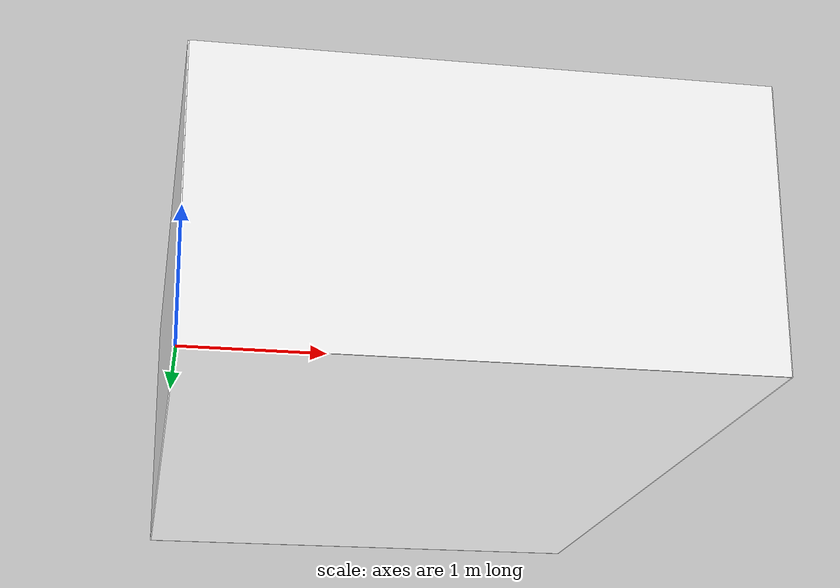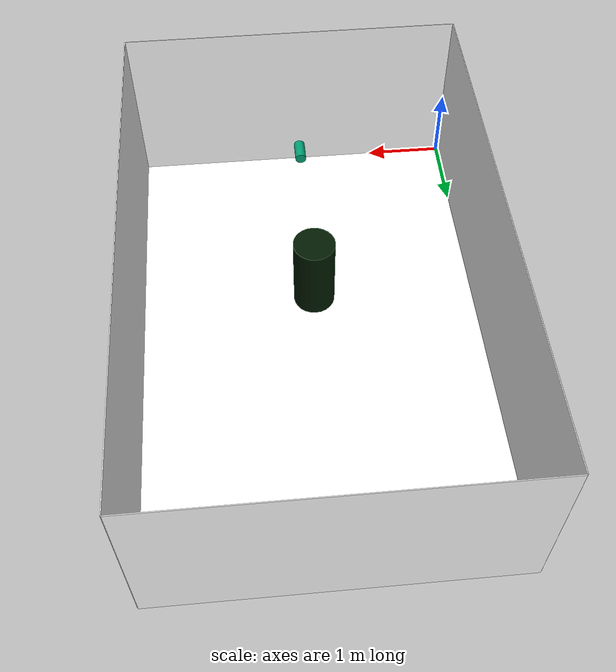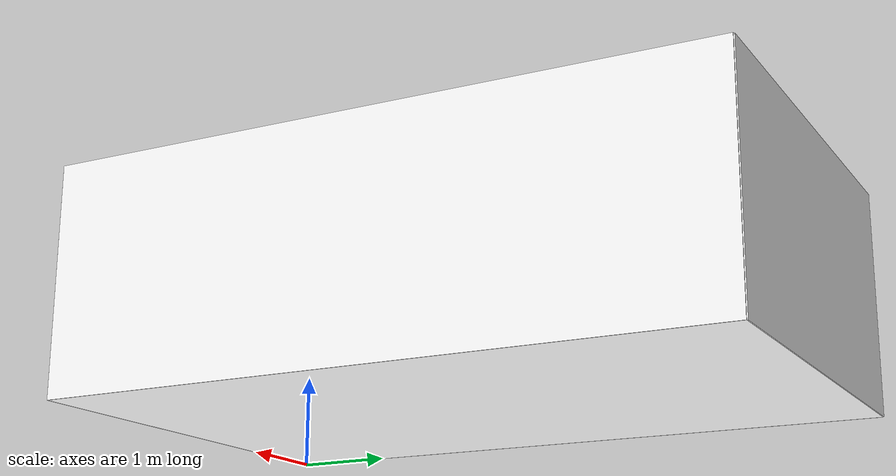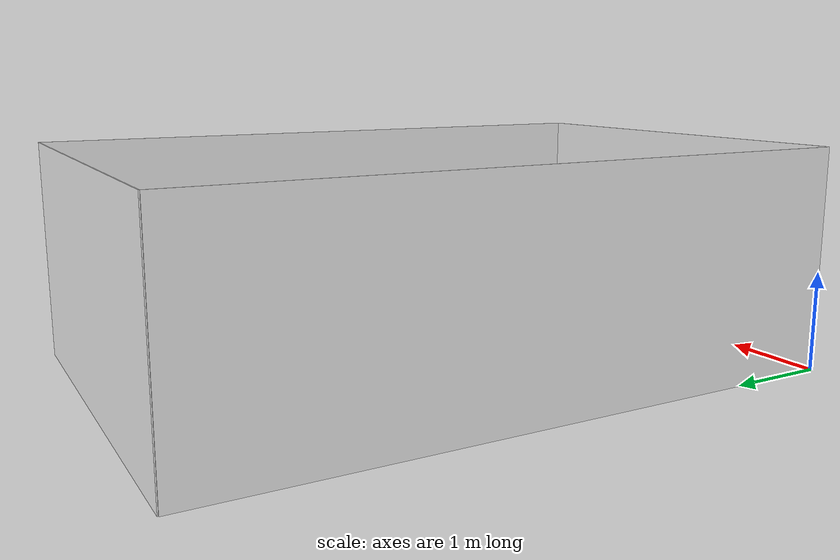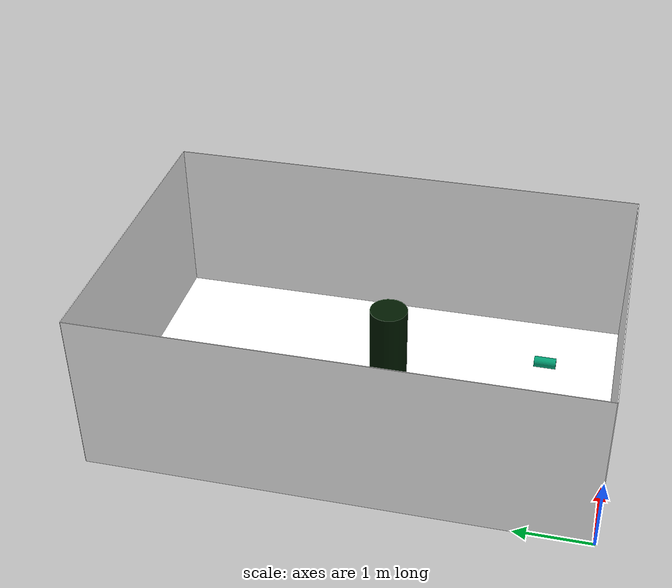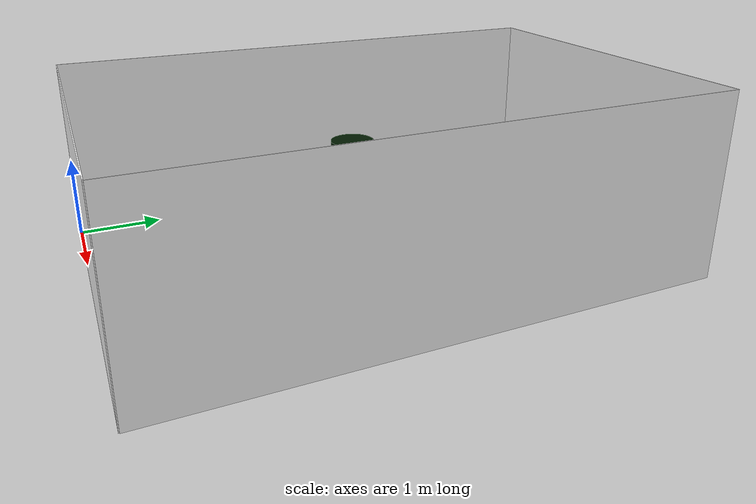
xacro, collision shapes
<?xml version="1.0"?>
<robot name="blueview_basement_cylinder_setup"
       xmlns:xacro="http://www.ros.org/wiki/xacro">

  <xacro:include filename="$(find gtri_based_fls)/urdf/basement_tank.xacro" />
  <xacro:include filename="$(find gtri_based_fls)/urdf/cylinder_target.xacro" />
  <xacro:include filename="$(find gtri_based_fls)/urdf/gtri_based_fls.xacro" />

  <xacro:basement_tank/>
  <xacro:cylinder_target radius="0.25" length="1"/>
  <xacro:gtri_based_fls/>

  <link name="world"/>
  <joint name="fixed_basement_tank" type="fixed">
    <parent link="world"/>
    <child link="basement_tank"/>
    <origin xyz="0 0 0" rpy="0 0 0"/>
  </joint>
  <joint name="fixed_cylinder_target" type="fixed">
    <parent link="world"/>
    <child link="cylinder_target"/>
    <origin xyz="2.1 3.0 1.0" rpy="0 0 0"/>
  </joint>
  <joint name="fixed_gtri_based_fls" type="fixed">
    <parent link="world"/>
    <child link="gtri_based_fls"/>
    <origin xyz="2.1 1.0 1.0" rpy="0 0 1.5709"/>
  </joint>

</robot>

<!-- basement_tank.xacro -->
<robot xmlns:xacro="http://www.ros.org/wiki/xacro">
  <xacro:macro name="basement_tank">
    <link name='basement_tank'>

      <inertial>
        <origin xyz="0 0 0" rpy="0 0 0"/>
        <mass value="1"/>
        <inertia ixx="0.1" ixy="0" ixz="0" iyy="0.1" iyz="0" izz="0.1" />
      </inertial>

      <collision name='bottom'>
        <gazebo>
          <laser_retro>0.50</laser_retro>
        </gazebo>
        <origin xyz="2.135 3.27 0.005" rpy="0 0 0"/>
        <geometry>
          <box size="4.27 6.54 0.01"/>
        </geometry>
      </collision>
      <visual name='visual1'>
        <origin xyz="2.135 3.27 0.005" rpy="0 0 0"/>
        <geometry>
          <box size="4.27 6.54 0.01"/>
        </geometry>
        <material name="white">
          <color rgba="1.0 1.0 1.0 1.0"/>
        </material>
      </visual>

      <collision name='left_side'>
        <gazebo>
          <laserRetro>0.6</laserRetro>
        </gazebo>
        <origin xyz="-0.005 3.27 1.12" rpy="0 0 0"/>
        <geometry>
          <box size="0.01 6.54 2.24"/>
        </geometry>
      </collision>
      <visual name='visual2'>
        <origin xyz="-0.005 3.27 1.12" rpy="0 0 0"/>
        <geometry>
          <box size="0.01 6.54 2.24"/>
        </geometry>
        <material name="white"/>
      </visual>

      <collision name='right_side'>
        <gazebo>
          <laser_retro>50</laser_retro>
        </gazebo>
        <origin xyz="4.275 3.27 1.12" rpy="0 0 0"/>
        <geometry>
          <box size="0.01 6.54 2.24"/>
        </geometry>
      </collision>
      <visual name='visual3'>
        <origin xyz="4.275 3.27 1.12" rpy="0 0 0"/>
        <geometry>
          <box size="0.01 6.54 2.24"/>
        </geometry>
        <material name="white"/>
      </visual>

      <collision name='front_side'>
        <gazebo>
          <laser_retro>50</laser_retro>
        </gazebo>
        <origin xyz="2.135 -0.005 1.12" rpy="0 0 0"/>
        <geometry>
          <box size="4.27 0.01 2.24"/>
        </geometry>
      </collision>
      <visual name='visual4'>
        <origin xyz="2.135 -0.005 1.12" rpy="0 0 0"/>
        <geometry>
          <box size="4.27 0.01 2.24"/>
        </geometry>
        <material name="white"/>
      </visual>

      <collision name='back_side'>
        <gazebo>
          <laser_retro>50</laser_retro>
        </gazebo>
        <origin xyz="2.135 6.545 1.12" rpy="0 0 0"/>
        <geometry>
          <box size="4.27 0.01 2.24"/>
        </geometry>
      </collision>
      <visual name='visual5'>
        <origin xyz="2.135 6.545 1.12" rpy="0 0 0"/>
        <geometry>
          <box size="4.27 0.01 2.24"/>
        </geometry>
        <material name="white"/>
      </visual>

    </link>
  </xacro:macro>
</robot>

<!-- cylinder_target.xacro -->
<robot xmlns:xacro="http://www.ros.org/wiki/xacro">

  <material name="grey">
    <color rgba="0.2 0.2 0.8 1.0"/>
  </material>

  <xacro:macro name="cylinder_target" params="radius length">
    <link name='cylinder_target'>
      <inertial>
        <mass value="1" />
        <!-- Mark only - based on cylinder -->
        <inertia ixx="0.145833" ixy="0" ixz="0" iyy="0.145833" iyz="0" izz="0.125" />

      </inertial>
      <collision name='cylinder'>
        <laser_retro>255</laser_retro>
        <geometry>
          <cylinder radius="${radius}" length="${length}"/>
        </geometry>
        <max_contacts>10</max_contacts>
        <surface>
          <contact>
            <ode/>
          </contact>
          <bounce/>
          <friction>
            <torsional>
              <ode/>
            </torsional>
            <ode/>
          </friction>
        </surface>
      </collision>
      <visual name='visual'>
        <geometry>
          <cylinder radius="${radius}" length="${length}"/>
        </geometry>

	<material name="blue">
		<color rgba="0.0 0.1 0.0 1.0"/>
	</material>

      </visual>
      <self_collide>0</self_collide>
      <enable_wind>0</enable_wind>
      <kinematic>0</kinematic>
    </link>

  </xacro:macro>
</robot>

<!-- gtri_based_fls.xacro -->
<robot xmlns:xacro="http://www.ros.org/wiki/xacro">
  <xacro:macro name="gtri_based_fls">

  <!--
      raycount: number of actual rays used in gazebo
      rangeCount: number of range values made available to user
      If rayCount is less than rangeCount, it will interpolate.
  -->
    <link name="gtri_based_fls">
      <inertial>
        <origin xyz="0 0 0" rpy="0 0 0"/>
        <mass value="1" />
        <!-- Mark only - based on cylinder -->
        <inertia ixx="0.1" ixy="0" ixz="0" iyy="0.1" iyz="0" izz="0.1" />
      </inertial>
      <collision name="collision">
        <origin xyz="-0.08 0 0" rpy="0 1.5708 0"/>
        <geometry>
          <cylinder length="0.28" radius="0.07"/>
        </geometry>
      </collision>
      <visual name="visual">
        <geometry>
          <mesh filename="file://$(find gtri_based_fls)/models/gtri_based_blueview_p900/meshes/p900.dae"/>
        </geometry>
      </visual>
    </link>

  <gazebo reference="gtri_based_fls">

    <selfCollide>false</selfCollide>
    <turnGravityOff>true</turnGravityOff>

    <sensor type="ray" name="ray_sensor">
      <always_on>true</always_on>
      <update_rate>15.0</update_rate>
      <pose>0 0 0 0 0 0</pose>
      <visualize>false</visualize>
      <ray>
        <scan>
          <horizontal>
            <samples>280</samples>
            <resolution>1</resolution>
            <min_angle>-0.39269875</min_angle>
            <max_angle>0.39269875</max_angle>
          </horizontal>
          <vertical>
            <samples>70</samples>
            <resolution>1</resolution>
            <min_angle>-0.174532778</min_angle>
            <max_angle>0.174532778</max_angle>
          </vertical>
        </scan>

        <range>
          <min>0.1</min>
          <max>10.0</max>
          <resolution>0.01</resolution>
        </range>
      </ray>

        <plugin name="gazebo_ros_gtri_based_fls_plugin" filename="libgtri_based_fls_plugin.so">
          <alwaysOn>true</alwaysOn>
          <updateRate>30.0</updateRate>
          <linkName>sonar_link</linkName>
          <frameName>sonar_link</frameName>
          <cloudTopicName>sonar_cloud</cloudTopicName>
          <imageTopicName>sonar_image</imageTopicName>
          <imageCameraInfoTopicName>sonar_image_camera_info</imageCameraInfoTopicName>
          <horizontalMinAngle>-0.39269875</horizontalMinAngle>
          <horizontalMaxAngle>0.39269875</horizontalMaxAngle>
          <imageOutputDir>/tmp</imageOutputDir>

        </plugin>
    </sensor>
  </gazebo>
  </xacro:macro>
</robot>
